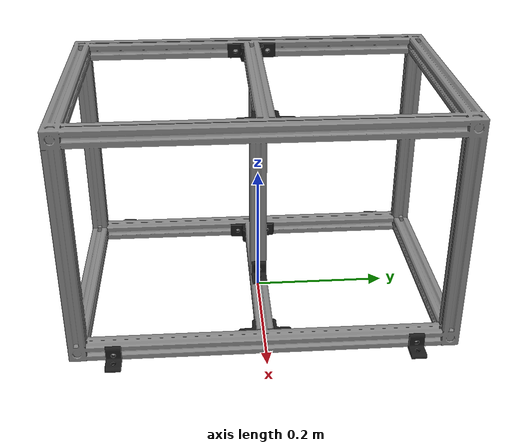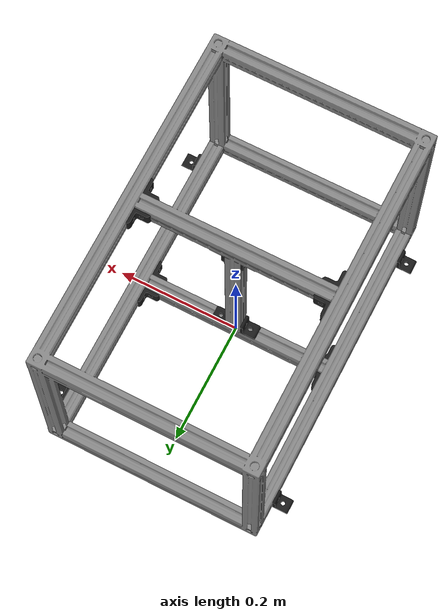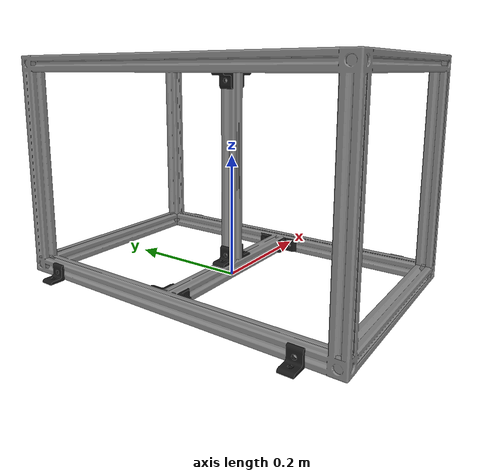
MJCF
<mujoco model="table_cube_vis">
  <default>
    <default class="visual">
      <geom group="2" type="mesh" contype="0" conaffinity="0"/>
    </default>
    <default class="collision">
      <geom group="3" type="mesh"/>
    </default>
  </default>
  <asset>
    <material name="mat0" specular="0.31333" shininess="1.0" rgba="0.52 0.52 0.52 1.0"/>
    <material name="mat1" specular="0.5" shininess="1.0" rgba="0.10629 0.10629 0.10629 1.0"/>
    <material name="mat2" specular="0.0" shininess="0.25" rgba="0.75 0.75 0.75 1.0"/>
    <mesh name="table_cube_vis_0" file="table_cube_vis_0.obj"/>
    <mesh name="table_cube_vis_1" file="table_cube_vis_1.obj"/>
    <mesh name="table_cube_collision" file="table_cube_collision.stl"/>
  </asset>
  <worldbody>
    <body name="table_cube">
      <body euler="90 0 0">
        <geom mesh="table_cube_vis_0" material="mat1" class="visual"/>
        <geom mesh="table_cube_vis_1" material="mat0" class="visual"/>
      </body>
      <geom mesh="table_cube_collision" class="collision"/>
    </body>
  </worldbody>
</mujoco>
